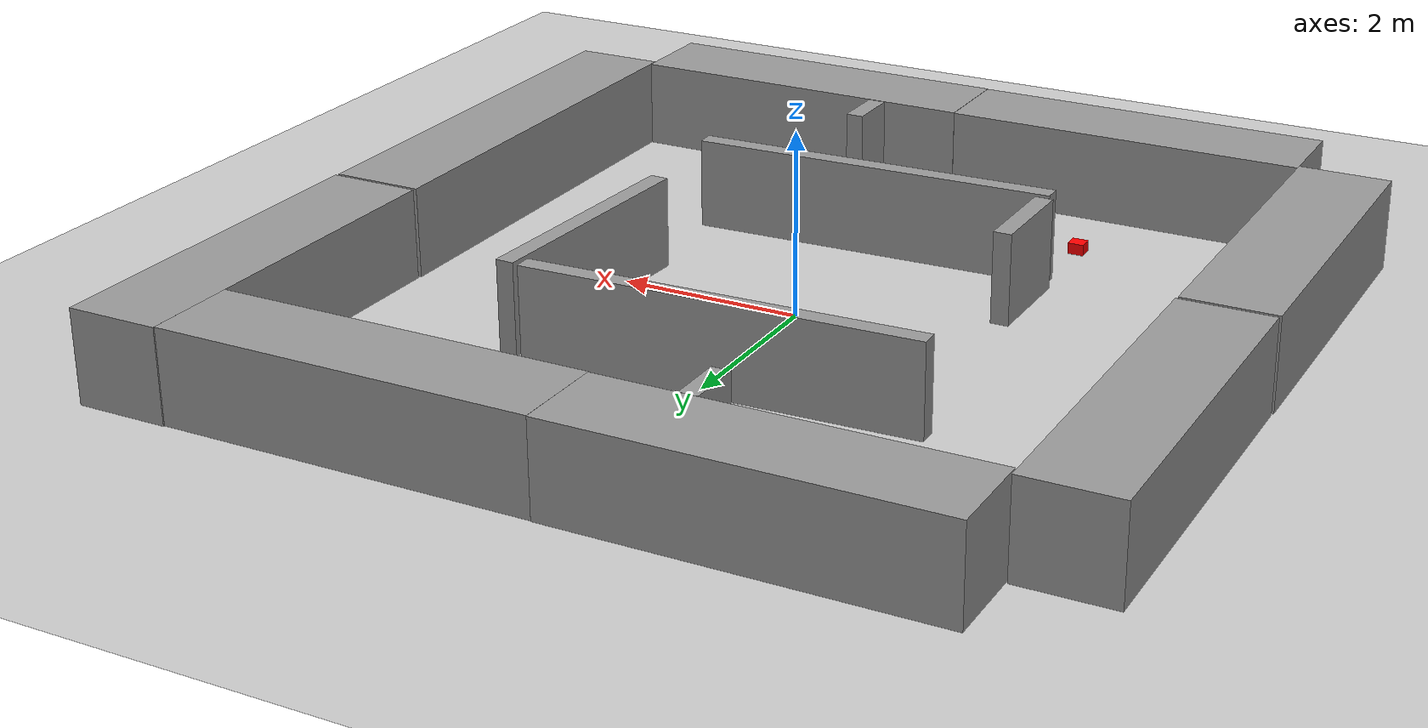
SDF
<sdf version="1.7">
 <world name="default">
  <light name="sun" type="directional">
   <cast_shadows>0</cast_shadows>
   <pose>0 0 10 0 -0 0</pose>
   <diffuse>0.8 0.8 0.8 1</diffuse>
   <specular>0.2 0.2 0.2 1</specular>
   <attenuation>
    <range>1000</range>
    <constant>0.9</constant>
    <linear>0.01</linear>
    <quadratic>0.001</quadratic>
   </attenuation>
   <direction>-0.5 0.1 -0.9</direction>
   <spot><inner_angle>0</inner_angle><outer_angle>0</outer_angle><falloff>0</falloff></spot>
  </light>
  <model name="ground_plane">
   <static>1</static>
   <link name="link">
    <collision name="collision">
     <geometry><plane><normal>0 0 1</normal><size>100 100</size></plane></geometry>
     <surface><friction><ode><mu>100</mu><mu2>50</mu2></ode></friction></surface>
    </collision>
    <visual name="visual">
     <cast_shadows>0</cast_shadows>
     <geometry><plane><normal>0 0 1</normal><size>100 100</size></plane></geometry>
     <material>
      <script><uri>file://media/materials/scripts/gazebo.material</uri><name>Gazebo/Grey</name></script>
     </material>
    </visual>
   </link>
  </model>
  <gravity>0 0 -9.8</gravity>
  <scene><ambient>0.4 0.4 0.4 1</ambient><background>0.7 0.7 0.7 1</background><shadows>1</shadows></scene>
  <magnetic_field>6e-06 2.3e-05 -4.2e-05</magnetic_field>
  <atmosphere type="adiabatic"/>
  <physics type="ode">
   <max_step_size>0.001</max_step_size>
   <real_time_factor>1</real_time_factor>
   <real_time_update_rate>1000</real_time_update_rate>
  </physics>
  <audio><device>default</device></audio>
  <spherical_coordinates>
   <surface_model>EARTH_WGS84</surface_model>
   <latitude_deg>0</latitude_deg>
   <longitude_deg>0</longitude_deg>
   <elevation>0</elevation>
   <heading_deg>0</heading_deg>
  </spherical_coordinates>
  <model name="unit_box">
   <pose>4.52004 -1.61684 0.499995 1e-06 3e-06 0.000225</pose>
   <link name="link">
    <inertial>
     <mass>1</mass>
     <inertia>
      <ixx>0.166667</ixx>
      <ixy>0</ixy>
      <ixz>0</ixz>
      <iyy>0.166667</iyy>
      <iyz>0</iyz>
      <izz>0.166667</izz>
     </inertia>
    </inertial>
    <collision name="collision"><geometry><box><size>1 5.02926 1</size></box></geometry></collision>
    <visual name="visual">
     <geometry><box><size>1 5.02926 1</size></box></geometry>
     <material>
      <script><name>Gazebo/Grey</name><uri>file://media/materials/scripts/gazebo.material</uri></script>
     </material>
    </visual>
   </link>
  </model>
  <model name="unit_box_clone">
   <pose>4.53627 2.96113 0.499194 0.000397 -0 -0.001836</pose>
   <link name="link">
    <inertial>
     <mass>1</mass>
     <inertia>
      <ixx>0.166667</ixx>
      <ixy>0</ixy>
      <ixz>0</ixz>
      <iyy>0.166667</iyy>
      <iyz>0</iyz>
      <izz>0.166667</izz>
     </inertia>
    </inertial>
    <collision name="collision"><geometry><box><size>1 4.0622 1</size></box></geometry></collision>
    <visual name="visual">
     <geometry><box><size>1 4.0622 1</size></box></geometry>
     <material>
      <script><name>Gazebo/Grey</name><uri>file://media/materials/scripts/gazebo.material</uri></script>
     </material>
    </visual>
   </link>
  </model>
  <model name="unit_box_0">
   <pose>2.0271 4.48154 0.499235 0 -0.00038 -0.001328</pose>
   <link name="link">
    <inertial>
     <mass>1</mass>
     <inertia>
      <ixx>0.166667</ixx>
      <ixy>0</ixy>
      <ixz>0</ixz>
      <iyy>0.166667</iyy>
      <iyz>0</iyz>
      <izz>0.166667</izz>
     </inertia>
    </inertial>
    <collision name="collision"><geometry><box><size>4.02362 1 1</size></box></geometry></collision>
    <visual name="visual">
     <geometry><box><size>4.02362 1 1</size></box></geometry>
     <material>
      <script><name>Gazebo/Grey</name><uri>file://media/materials/scripts/gazebo.material</uri></script>
     </material>
    </visual>
   </link>
  </model>
  <model name="unit_box_0_clone">
   <pose>-1.99439 4.49283 0.499239 0 0.000379 0.000307</pose>
   <link name="link">
    <inertial>
     <mass>1</mass>
     <inertia>
      <ixx>0.166667</ixx>
      <ixy>0</ixy>
      <ixz>0</ixz>
      <iyy>0.166667</iyy>
      <iyz>0</iyz>
      <izz>0.166667</izz>
     </inertia>
    </inertial>
    <collision name="collision"><geometry><box><size>4.01582 1 1</size></box></geometry></collision>
    <visual name="visual">
     <geometry><box><size>4.01582 1 1</size></box></geometry>
     <material>
      <script><name>Gazebo/Grey</name><uri>file://media/materials/scripts/gazebo.material</uri></script>
     </material>
    </visual>
   </link>
  </model>
  <model name="unit_box_0_clone_clone">
   <pose>2.00808 -4.51737 0.499239 0 -0.000379 -0.001673</pose>
   <link name="link">
    <inertial>
     <mass>1</mass>
     <inertia>
      <ixx>0.166667</ixx>
      <ixy>0</ixy>
      <ixz>0</ixz>
      <iyy>0.166667</iyy>
      <iyz>0</iyz>
      <izz>0.166667</izz>
     </inertia>
    </inertial>
    <collision name="collision"><geometry><box><size>4.01582 1 1</size></box></geometry></collision>
    <visual name="visual">
     <geometry><box><size>4.01582 1 1</size></box></geometry>
     <material>
      <script><name>Gazebo/Grey</name><uri>file://media/materials/scripts/gazebo.material</uri></script>
     </material>
    </visual>
   </link>
  </model>
  <model name="unit_box_clone_0">
   <pose>-4.52529 -2.02643 0.499196 -0.000396 0 4e-06</pose>
   <link name="link">
    <inertial>
     <mass>1</mass>
     <inertia>
      <ixx>0.166667</ixx>
      <ixy>0</ixy>
      <ixz>0</ixz>
      <iyy>0.166667</iyy>
      <iyz>0</iyz>
      <izz>0.166667</izz>
     </inertia>
    </inertial>
    <collision name="collision"><geometry><box><size>1 4.0622 1</size></box></geometry></collision>
    <visual name="visual">
     <geometry><box><size>1 4.0622 1</size></box></geometry>
     <material>
      <script><name>Gazebo/Grey</name><uri>file://media/materials/scripts/gazebo.material</uri></script>
     </material>
    </visual>
   </link>
  </model>
  <model name="unit_box_clone_1">
   <pose>-4.51471 2.07689 0.499196 0.000396 0 0.000881</pose>
   <link name="link">
    <inertial>
     <mass>1</mass>
     <inertia>
      <ixx>0.166667</ixx>
      <ixy>0</ixy>
      <ixz>0</ixz>
      <iyy>0.166667</iyy>
      <iyz>0</iyz>
      <izz>0.166667</izz>
     </inertia>
    </inertial>
    <collision name="collision"><geometry><box><size>1 4.0622 1</size></box></geometry></collision>
    <visual name="visual">
     <geometry><box><size>1 4.0622 1</size></box></geometry>
     <material>
      <script><name>Gazebo/Grey</name><uri>file://media/materials/scripts/gazebo.material</uri></script>
     </material>
    </visual>
   </link>
  </model>
  <model name="unit_box_0_clone_clone_clone">
   <pose>-2.01504 -4.49869 0.499239 0 -0.000379 -1e-06</pose>
   <link name="link">
    <inertial>
     <mass>1</mass>
     <inertia>
      <ixx>0.166667</ixx>
      <ixy>0</ixy>
      <ixz>0</ixz>
      <iyy>0.166667</iyy>
      <iyz>0</iyz>
      <izz>0.166667</izz>
     </inertia>
    </inertial>
    <collision name="collision"><geometry><box><size>4.01582 1 1</size></box></geometry></collision>
    <visual name="visual">
     <geometry><box><size>4.01582 1 1</size></box></geometry>
     <material>
      <script><name>Gazebo/Grey</name><uri>file://media/materials/scripts/gazebo.material</uri></script>
     </material>
    </visual>
   </link>
  </model>
  <model name="unit_box_1_clone_1_clone_clone_1">
   <link name="link">
    <inertial>
     <mass>1</mass>
     <inertia>
      <ixx>0.166667</ixx>
      <ixy>0</ixy>
      <ixz>0</ixz>
      <iyy>0.166667</iyy>
      <iyz>0</iyz>
      <izz>0.166667</izz>
     </inertia>
    </inertial>
    <visual name="visual">
     <geometry><box><size>0.177426 0.164052 0.124949</size></box></geometry>
     <material>
      <script><name>Gazebo/Grey</name><uri>file://media/materials/scripts/gazebo.material</uri></script>
      <shader type="pixel"><normal_map>__default__</normal_map></shader>
      <ambient>0 0 1 1</ambient>
      <diffuse>0 0 1 1</diffuse>
      <specular>0 0 1 1</specular>
      <emissive>0 0 1 1</emissive>
      <lighting>1</lighting>
     </material>
    </visual>
    <collision name="collision">
     <geometry><box><size>0.177426 0.164052 0.124949</size></box></geometry>
     <surface>
      <friction>
       <ode><mu>1</mu><mu2>1</mu2><fdir1>0 0 0</fdir1><slip1>0</slip1><slip2>0</slip2></ode>
       <torsional>
        <coefficient>1</coefficient>
        <patch_radius>0</patch_radius>
        <surface_radius>0</surface_radius>
        <use_patch_radius>1</use_patch_radius>
        <ode><slip>0</slip></ode>
       </torsional>
      </friction>
      <bounce><restitution_coefficient>0</restitution_coefficient><threshold>1e+06</threshold></bounce>
      <contact>
       <collide_without_contact>0</collide_without_contact>
       <collide_without_contact_bitmask>1</collide_without_contact_bitmask>
       <collide_bitmask>1</collide_bitmask>
       <ode>
        <soft_cfm>0</soft_cfm>
        <soft_erp>0.2</soft_erp>
        <kp>1e+13</kp>
        <kd>1</kd>
        <max_vel>0.01</max_vel>
        <min_depth>0</min_depth>
       </ode>
       <bullet>
        <split_impulse>1</split_impulse>
        <split_impulse_penetration_threshold>-0.01</split_impulse_penetration_threshold>
        <soft_cfm>0</soft_cfm>
        <soft_erp>0.2</soft_erp>
        <kp>1e+13</kp>
        <kd>1</kd>
       </bullet>
      </contact>
     </surface>
    </collision>
   </link>
   <static>0</static>
   <pose>3.36369 3.50524 0.062474 1e-06 -4e-06 -0.000128</pose>
  </model>
  <model name="unit_box_1_clone_1_clone">
   <link name="link">
    <inertial>
     <mass>1</mass>
     <inertia>
      <ixx>0.166667</ixx>
      <ixy>0</ixy>
      <ixz>0</ixz>
      <iyy>0.166667</iyy>
      <iyz>0</iyz>
      <izz>0.166667</izz>
     </inertia>
    </inertial>
    <visual name="visual">
     <geometry><box><size>0.177426 0.164052 0.124949</size></box></geometry>
     <material>
      <script><name>Gazebo/Grey</name><uri>file://media/materials/scripts/gazebo.material</uri></script>
      <shader type="pixel"><normal_map>__default__</normal_map></shader>
      <ambient>1 0 0 1</ambient>
      <diffuse>1 0 0 1</diffuse>
      <specular>1 0 0 1</specular>
      <emissive>1 0 0 1</emissive>
      <lighting>1</lighting>
     </material>
    </visual>
    <collision name="collision">
     <geometry><box><size>0.177426 0.164052 0.124949</size></box></geometry>
     <surface>
      <friction>
       <ode><mu>1</mu><mu2>1</mu2><fdir1>0 0 0</fdir1><slip1>0</slip1><slip2>0</slip2></ode>
       <torsional>
        <coefficient>1</coefficient>
        <patch_radius>0</patch_radius>
        <surface_radius>0</surface_radius>
        <use_patch_radius>1</use_patch_radius>
        <ode><slip>0</slip></ode>
       </torsional>
      </friction>
      <bounce><restitution_coefficient>0</restitution_coefficient><threshold>1e+06</threshold></bounce>
      <contact>
       <collide_without_contact>0</collide_without_contact>
       <collide_without_contact_bitmask>1</collide_without_contact_bitmask>
       <collide_bitmask>1</collide_bitmask>
       <ode>
        <soft_cfm>0</soft_cfm>
        <soft_erp>0.2</soft_erp>
        <kp>1e+13</kp>
        <kd>1</kd>
        <max_vel>0.01</max_vel>
        <min_depth>0</min_depth>
       </ode>
       <bullet>
        <split_impulse>1</split_impulse>
        <split_impulse_penetration_threshold>-0.01</split_impulse_penetration_threshold>
        <soft_cfm>0</soft_cfm>
        <soft_erp>0.2</soft_erp>
        <kp>1e+13</kp>
        <kd>1</kd>
       </bullet>
      </contact>
     </surface>
    </collision>
   </link>
   <static>0</static>
   <pose>-1.9458 -2.98574 0.062475 4e-06 -0 -2.1e-05</pose>
  </model>
  <model name="unit_box_1_clone_1_clone_clone_3">
   <link name="link">
    <inertial>
     <mass>1</mass>
     <inertia>
      <ixx>0.166667</ixx>
      <ixy>0</ixy>
      <ixz>0</ixz>
      <iyy>0.166667</iyy>
      <iyz>0</iyz>
      <izz>0.166667</izz>
     </inertia>
    </inertial>
    <visual name="visual">
     <geometry><box><size>0.177426 0.164052 0.124949</size></box></geometry>
     <material>
      <script><name>Gazebo/Grey</name><uri>file://media/materials/scripts/gazebo.material</uri></script>
      <shader type="pixel"><normal_map>__default__</normal_map></shader>
      <ambient>1 0 0 1</ambient>
      <diffuse>1 0 0 1</diffuse>
      <specular>1 0 0 1</specular>
      <emissive>1 0 0 1</emissive>
      <lighting>1</lighting>
     </material>
    </visual>
    <collision name="collision">
     <geometry><box><size>0.177426 0.164052 0.124949</size></box></geometry>
     <surface>
      <friction>
       <ode><mu>1</mu><mu2>1</mu2><fdir1>0 0 0</fdir1><slip1>0</slip1><slip2>0</slip2></ode>
       <torsional>
        <coefficient>1</coefficient>
        <patch_radius>0</patch_radius>
        <surface_radius>0</surface_radius>
        <use_patch_radius>1</use_patch_radius>
        <ode><slip>0</slip></ode>
       </torsional>
      </friction>
      <bounce><restitution_coefficient>0</restitution_coefficient><threshold>1e+06</threshold></bounce>
      <contact>
       <collide_without_contact>0</collide_without_contact>
       <collide_without_contact_bitmask>1</collide_without_contact_bitmask>
       <collide_bitmask>1</collide_bitmask>
       <ode>
        <soft_cfm>0</soft_cfm>
        <soft_erp>0.2</soft_erp>
        <kp>1e+13</kp>
        <kd>1</kd>
        <max_vel>0.01</max_vel>
        <min_depth>0</min_depth>
       </ode>
       <bullet>
        <split_impulse>1</split_impulse>
        <split_impulse_penetration_threshold>-0.01</split_impulse_penetration_threshold>
        <soft_cfm>0</soft_cfm>
        <soft_erp>0.2</soft_erp>
        <kp>1e+13</kp>
        <kd>1</kd>
       </bullet>
      </contact>
     </surface>
    </collision>
   </link>
   <static>0</static>
   <pose>-3.38977 3.67037 0.062474 1e-06 5e-06 1.2e-05</pose>
  </model>
  <model name="unit_box_1_clone_1">
   <link name="link">
    <inertial>
     <mass>1</mass>
     <inertia>
      <ixx>0.166667</ixx>
      <ixy>0</ixy>
      <ixz>0</ixz>
      <iyy>0.166667</iyy>
      <iyz>0</iyz>
      <izz>0.166667</izz>
     </inertia>
    </inertial>
    <visual name="visual">
     <geometry><box><size>2.76914 0.197957 1</size></box></geometry>
     <material>
      <script><name>Gazebo/Grey</name><uri>file://media/materials/scripts/gazebo.material</uri></script>
      <shader type="pixel"/>
     </material>
    </visual>
    <collision name="collision">
     <geometry><box><size>2.76914 0.197957 1</size></box></geometry>
     <surface>
      <friction>
       <ode><mu>1</mu><mu2>1</mu2><fdir1>0 0 0</fdir1><slip1>0</slip1><slip2>0</slip2></ode>
       <torsional>
        <coefficient>1</coefficient>
        <patch_radius>0</patch_radius>
        <surface_radius>0</surface_radius>
        <use_patch_radius>1</use_patch_radius>
        <ode><slip>0</slip></ode>
       </torsional>
      </friction>
      <bounce><restitution_coefficient>0</restitution_coefficient><threshold>1e+06</threshold></bounce>
      <contact>
       <collide_without_contact>0</collide_without_contact>
       <collide_without_contact_bitmask>1</collide_without_contact_bitmask>
       <collide_bitmask>1</collide_bitmask>
       <ode>
        <soft_cfm>0</soft_cfm>
        <soft_erp>0.2</soft_erp>
        <kp>1e+13</kp>
        <kd>1</kd>
        <max_vel>0.01</max_vel>
        <min_depth>0</min_depth>
       </ode>
       <bullet>
        <split_impulse>1</split_impulse>
        <split_impulse_penetration_threshold>-0.01</split_impulse_penetration_threshold>
        <soft_cfm>0</soft_cfm>
        <soft_erp>0.2</soft_erp>
        <kp>1e+13</kp>
        <kd>1</kd>
       </bullet>
      </contact>
     </surface>
    </collision>
   </link>
   <static>0</static>
   <pose>2.01135 0.781898 0.499888 3e-06 -8.2e-05 -1.62527</pose>
  </model>
  <model name="unit_box_1_clone_0_clone">
   <link name="link">
    <inertial>
     <mass>1</mass>
     <inertia>
      <ixx>0.166667</ixx>
      <ixy>0</ixy>
      <ixz>0</ixz>
      <iyy>0.166667</iyy>
      <iyz>0</iyz>
      <izz>0.166667</izz>
     </inertia>
    </inertial>
    <visual name="visual">
     <geometry><box><size>4.08019 0.197957 1</size></box></geometry>
     <material>
      <script><name>Gazebo/Grey</name><uri>file://media/materials/scripts/gazebo.material</uri></script>
      <shader type="pixel"/>
     </material>
    </visual>
    <collision name="collision">
     <geometry><box><size>4.08019 0.197957 1</size></box></geometry>
     <surface>
      <friction>
       <ode><mu>1</mu><mu2>1</mu2><fdir1>0 0 0</fdir1><slip1>0</slip1><slip2>0</slip2></ode>
       <torsional>
        <coefficient>1</coefficient>
        <patch_radius>0</patch_radius>
        <surface_radius>0</surface_radius>
        <use_patch_radius>1</use_patch_radius>
        <ode><slip>0</slip></ode>
       </torsional>
      </friction>
      <bounce><restitution_coefficient>0</restitution_coefficient><threshold>1e+06</threshold></bounce>
      <contact>
       <collide_without_contact>0</collide_without_contact>
       <collide_without_contact_bitmask>1</collide_without_contact_bitmask>
       <collide_bitmask>1</collide_bitmask>
       <ode>
        <soft_cfm>0</soft_cfm>
        <soft_erp>0.2</soft_erp>
        <kp>1e+13</kp>
        <kd>1</kd>
        <max_vel>0.01</max_vel>
        <min_depth>0</min_depth>
       </ode>
       <bullet>
        <split_impulse>1</split_impulse>
        <split_impulse_penetration_threshold>-0.01</split_impulse_penetration_threshold>
        <soft_cfm>0</soft_cfm>
        <soft_erp>0.2</soft_erp>
        <kp>1e+13</kp>
        <kd>1</kd>
       </bullet>
      </contact>
     </surface>
    </collision>
   </link>
   <static>0</static>
   <pose>0.071447 -1.99497 0.499184 1.4e-05 0.000401 0.032419</pose>
  </model>
  <model name="unit_box_1_clone_1_clone_0">
   <link name="link">
    <inertial>
     <mass>1</mass>
     <inertia>
      <ixx>0.166667</ixx>
      <ixy>0</ixy>
      <ixz>0</ixz>
      <iyy>0.166667</iyy>
      <iyz>0</iyz>
      <izz>0.166667</izz>
     </inertia>
    </inertial>
    <visual name="visual">
     <geometry><box><size>1.12685 0.197957 1</size></box></geometry>
     <material>
      <script><name>Gazebo/Grey</name><uri>file://media/materials/scripts/gazebo.material</uri></script>
      <shader type="pixel"/>
     </material>
    </visual>
    <collision name="collision">
     <geometry><box><size>1.12685 0.197957 1</size></box></geometry>
     <surface>
      <friction>
       <ode><mu>1</mu><mu2>1</mu2><fdir1>0 0 0</fdir1><slip1>0</slip1><slip2>0</slip2></ode>
       <torsional>
        <coefficient>1</coefficient>
        <patch_radius>0</patch_radius>
        <surface_radius>0</surface_radius>
        <use_patch_radius>1</use_patch_radius>
        <ode><slip>0</slip></ode>
       </torsional>
      </friction>
      <bounce><restitution_coefficient>0</restitution_coefficient><threshold>1e+06</threshold></bounce>
      <contact>
       <collide_without_contact>0</collide_without_contact>
       <collide_without_contact_bitmask>1</collide_without_contact_bitmask>
       <collide_bitmask>1</collide_bitmask>
       <ode>
        <soft_cfm>0</soft_cfm>
        <soft_erp>0.2</soft_erp>
        <kp>1e+13</kp>
        <kd>1</kd>
        <max_vel>0.01</max_vel>
        <min_depth>0</min_depth>
       </ode>
       <bullet>
        <split_impulse>1</split_impulse>
        <split_impulse_penetration_threshold>-0.01</split_impulse_penetration_threshold>
        <soft_cfm>0</soft_cfm>
        <soft_erp>0.2</soft_erp>
        <kp>1e+13</kp>
        <kd>1</kd>
       </bullet>
      </contact>
     </surface>
    </collision>
   </link>
   <static>0</static>
   <pose>-1.93973 -1.31681 0.499997 0 3e-06 -1.57453</pose>
  </model>
  <model name="unit_box_1_clone_1_clone_0_clone_clone_clone">
   <link name="link">
    <inertial>
     <mass>1</mass>
     <inertia>
      <ixx>0.166667</ixx>
      <ixy>0</ixy>
      <ixz>0</ixz>
      <iyy>0.166667</iyy>
      <iyz>0</iyz>
      <izz>0.166667</izz>
     </inertia>
    </inertial>
    <visual name="visual">
     <geometry><box><size>0.59298 0.197957 1</size></box></geometry>
     <material>
      <script><name>Gazebo/Grey</name><uri>file://media/materials/scripts/gazebo.material</uri></script>
      <shader type="pixel"/>
     </material>
    </visual>
    <collision name="collision">
     <geometry><box><size>0.59298 0.197957 1</size></box></geometry>
     <surface>
      <friction>
       <ode><mu>1</mu><mu2>1</mu2><fdir1>0 0 0</fdir1><slip1>0</slip1><slip2>0</slip2></ode>
       <torsional>
        <coefficient>1</coefficient>
        <patch_radius>0</patch_radius>
        <surface_radius>0</surface_radius>
        <use_patch_radius>1</use_patch_radius>
        <ode><slip>0</slip></ode>
       </torsional>
      </friction>
      <bounce><restitution_coefficient>0</restitution_coefficient><threshold>1e+06</threshold></bounce>
      <contact>
       <collide_without_contact>0</collide_without_contact>
       <collide_without_contact_bitmask>1</collide_without_contact_bitmask>
       <collide_bitmask>1</collide_bitmask>
       <ode>
        <soft_cfm>0</soft_cfm>
        <soft_erp>0.2</soft_erp>
        <kp>1e+13</kp>
        <kd>1</kd>
        <max_vel>0.01</max_vel>
        <min_depth>0</min_depth>
       </ode>
       <bullet>
        <split_impulse>1</split_impulse>
        <split_impulse_penetration_threshold>-0.01</split_impulse_penetration_threshold>
        <soft_cfm>0</soft_cfm>
        <soft_erp>0.2</soft_erp>
        <kp>1e+13</kp>
        <kd>1</kd>
       </bullet>
      </contact>
     </surface>
    </collision>
   </link>
   <static>0</static>
   <pose>0.972316 -3.70266 0.499998 0 5e-06 -1.5782</pose>
  </model>
  <model name="unit_box_1_clone_1_clone_0_clone_clone_clone_clone">
   <link name="link">
    <inertial>
     <mass>1</mass>
     <inertia>
      <ixx>0.166667</ixx>
      <ixy>0</ixy>
      <ixz>0</ixz>
      <iyy>0.166667</iyy>
      <iyz>0</iyz>
      <izz>0.166667</izz>
     </inertia>
    </inertial>
    <visual name="visual">
     <geometry><box><size>0.59298 0.197957 1</size></box></geometry>
     <material>
      <script><name>Gazebo/Grey</name><uri>file://media/materials/scripts/gazebo.material</uri></script>
      <shader type="pixel"/>
     </material>
    </visual>
    <collision name="collision">
     <geometry><box><size>0.59298 0.197957 1</size></box></geometry>
     <surface>
      <friction>
       <ode><mu>1</mu><mu2>1</mu2><fdir1>0 0 0</fdir1><slip1>0</slip1><slip2>0</slip2></ode>
       <torsional>
        <coefficient>1</coefficient>
        <patch_radius>0</patch_radius>
        <surface_radius>0</surface_radius>
        <use_patch_radius>1</use_patch_radius>
        <ode><slip>0</slip></ode>
       </torsional>
      </friction>
      <bounce><restitution_coefficient>0</restitution_coefficient><threshold>1e+06</threshold></bounce>
      <contact>
       <collide_without_contact>0</collide_without_contact>
       <collide_without_contact_bitmask>1</collide_without_contact_bitmask>
       <collide_bitmask>1</collide_bitmask>
       <ode>
        <soft_cfm>0</soft_cfm>
        <soft_erp>0.2</soft_erp>
        <kp>1e+13</kp>
        <kd>1</kd>
        <max_vel>0.01</max_vel>
        <min_depth>0</min_depth>
       </ode>
       <bullet>
        <split_impulse>1</split_impulse>
        <split_impulse_penetration_threshold>-0.01</split_impulse_penetration_threshold>
        <soft_cfm>0</soft_cfm>
        <soft_erp>0.2</soft_erp>
        <kp>1e+13</kp>
        <kd>1</kd>
       </bullet>
      </contact>
     </surface>
    </collision>
   </link>
   <static>0</static>
   <pose>-0.987545 3.69616 0.499998 -1e-06 5e-06 -1.57003</pose>
  </model>
  <model name="unit_box_1_clone_0_clone_clone">
   <link name="link">
    <inertial>
     <mass>1</mass>
     <inertia>
      <ixx>0.166667</ixx>
      <ixy>0</ixy>
      <ixz>0</ixz>
      <iyy>0.166667</iyy>
      <iyz>0</iyz>
      <izz>0.166667</izz>
     </inertia>
    </inertial>
    <visual name="visual">
     <geometry><box><size>4.27329 0.197957 1</size></box></geometry>
     <material>
      <script><name>Gazebo/Grey</name><uri>file://media/materials/scripts/gazebo.material</uri></script>
      <shader type="pixel"/>
     </material>
    </visual>
    <collision name="collision">
     <geometry><box><size>4.27329 0.197957 1</size></box></geometry>
     <surface>
      <friction>
       <ode><mu>1</mu><mu2>1</mu2><fdir1>0 0 0</fdir1><slip1>0</slip1><slip2>0</slip2></ode>
       <torsional>
        <coefficient>1</coefficient>
        <patch_radius>0</patch_radius>
        <surface_radius>0</surface_radius>
        <use_patch_radius>1</use_patch_radius>
        <ode><slip>0</slip></ode>
       </torsional>
      </friction>
      <bounce><restitution_coefficient>0</restitution_coefficient><threshold>1e+06</threshold></bounce>
      <contact>
       <collide_without_contact>0</collide_without_contact>
       <collide_without_contact_bitmask>1</collide_without_contact_bitmask>
       <collide_bitmask>1</collide_bitmask>
       <ode>
        <soft_cfm>0</soft_cfm>
        <soft_erp>0.2</soft_erp>
        <kp>1e+13</kp>
        <kd>1</kd>
        <max_vel>0.01</max_vel>
        <min_depth>0</min_depth>
       </ode>
       <bullet>
        <split_impulse>1</split_impulse>
        <split_impulse_penetration_threshold>-0.01</split_impulse_penetration_threshold>
        <soft_cfm>0</soft_cfm>
        <soft_erp>0.2</soft_erp>
        <kp>1e+13</kp>
        <kd>1</kd>
       </bullet>
      </contact>
     </surface>
    </collision>
   </link>
   <static>0</static>
   <pose>-0.214786 2.02614 0.498983 1.6e-05 0.000478 0.033515</pose>
  </model>
  <model name="unit_box_1_clone_1_clone_clone_2_clone">
   <link name="link">
    <inertial>
     <mass>1</mass>
     <inertia>
      <ixx>0.166667</ixx>
      <ixy>0</ixy>
      <ixz>0</ixz>
      <iyy>0.166667</iyy>
      <iyz>0</iyz>
      <izz>0.166667</izz>
     </inertia>
    </inertial>
    <pose>1.40269 -2.76843 -5e-06 0 -0 0</pose>
    <visual name="visual">
     <geometry><box><size>0.177426 0.164052 0.124949</size></box></geometry>
     <material>
      <script><name>Gazebo/Grey</name><uri>file://media/materials/scripts/gazebo.material</uri></script>
      <shader type="pixel"><normal_map>__default__</normal_map></shader>
      <ambient>0 1 0 1</ambient>
      <diffuse>0 1 0 1</diffuse>
      <specular>0 1 0 1</specular>
      <emissive>0 1 0 1</emissive>
      <lighting>1</lighting>
     </material>
    </visual>
    <collision name="collision">
     <geometry><box><size>0.177426 0.164052 0.124949</size></box></geometry>
     <surface>
      <friction>
       <ode><mu>1</mu><mu2>1</mu2><fdir1>0 0 0</fdir1><slip1>0</slip1><slip2>0</slip2></ode>
       <torsional>
        <coefficient>1</coefficient>
        <patch_radius>0</patch_radius>
        <surface_radius>0</surface_radius>
        <use_patch_radius>1</use_patch_radius>
        <ode><slip>0</slip></ode>
       </torsional>
      </friction>
      <bounce><restitution_coefficient>0</restitution_coefficient><threshold>1e+06</threshold></bounce>
      <contact>
       <collide_without_contact>0</collide_without_contact>
       <collide_without_contact_bitmask>1</collide_without_contact_bitmask>
       <collide_bitmask>1</collide_bitmask>
       <ode>
        <soft_cfm>0</soft_cfm>
        <soft_erp>0.2</soft_erp>
        <kp>1e+13</kp>
        <kd>1</kd>
        <max_vel>0.01</max_vel>
        <min_depth>0</min_depth>
       </ode>
       <bullet>
        <split_impulse>1</split_impulse>
        <split_impulse_penetration_threshold>-0.01</split_impulse_penetration_threshold>
        <soft_cfm>0</soft_cfm>
        <soft_erp>0.2</soft_erp>
        <kp>1e+13</kp>
        <kd>1</kd>
       </bullet>
      </contact>
     </surface>
    </collision>
   </link>
   <static>0</static>
   <pose>1.55446 -0.90518 0.06249 5e-06 -1e-06 0.002999</pose>
  </model>
  <model name="unit_box_1_clone_1_clone_clone_2_clone_clone">
   <link name="link">
    <inertial>
     <mass>1</mass>
     <inertia>
      <ixx>0.166667</ixx>
      <ixy>0</ixy>
      <ixz>0</ixz>
      <iyy>0.166667</iyy>
      <iyz>0</iyz>
      <izz>0.166667</izz>
     </inertia>
    </inertial>
    <pose>1.40269 -2.76843 -5e-06 0 -0 0</pose>
    <visual name="visual">
     <geometry><box><size>0.177426 0.164052 0.124949</size></box></geometry>
     <material>
      <script><name>Gazebo/Grey</name><uri>file://media/materials/scripts/gazebo.material</uri></script>
      <shader type="pixel"><normal_map>__default__</normal_map></shader>
      <ambient>0 1 0 1</ambient>
      <diffuse>0 1 0 1</diffuse>
      <specular>0 1 0 1</specular>
      <emissive>0 1 0 1</emissive>
      <lighting>1</lighting>
     </material>
    </visual>
    <collision name="collision">
     <geometry><box><size>0.177426 0.164052 0.124949</size></box></geometry>
     <surface>
      <friction>
       <ode><mu>1</mu><mu2>1</mu2><fdir1>0 0 0</fdir1><slip1>0</slip1><slip2>0</slip2></ode>
       <torsional>
        <coefficient>1</coefficient>
        <patch_radius>0</patch_radius>
        <surface_radius>0</surface_radius>
        <use_patch_radius>1</use_patch_radius>
        <ode><slip>0</slip></ode>
       </torsional>
      </friction>
      <bounce><restitution_coefficient>0</restitution_coefficient><threshold>1e+06</threshold></bounce>
      <contact>
       <collide_without_contact>0</collide_without_contact>
       <collide_without_contact_bitmask>1</collide_without_contact_bitmask>
       <collide_bitmask>1</collide_bitmask>
       <ode>
        <soft_cfm>0</soft_cfm>
        <soft_erp>0.2</soft_erp>
        <kp>1e+13</kp>
        <kd>1</kd>
        <max_vel>0.01</max_vel>
        <min_depth>0</min_depth>
       </ode>
       <bullet>
        <split_impulse>1</split_impulse>
        <split_impulse_penetration_threshold>-0.01</split_impulse_penetration_threshold>
        <soft_cfm>0</soft_cfm>
        <soft_erp>0.2</soft_erp>
        <kp>1e+13</kp>
        <kd>1</kd>
       </bullet>
      </contact>
     </surface>
    </collision>
   </link>
   <static>0</static>
   <pose>-5.21044 3.31928 0.062469 -1e-06 -4e-06 -1e-05</pose>
  </model>
 </world>
</sdf>
